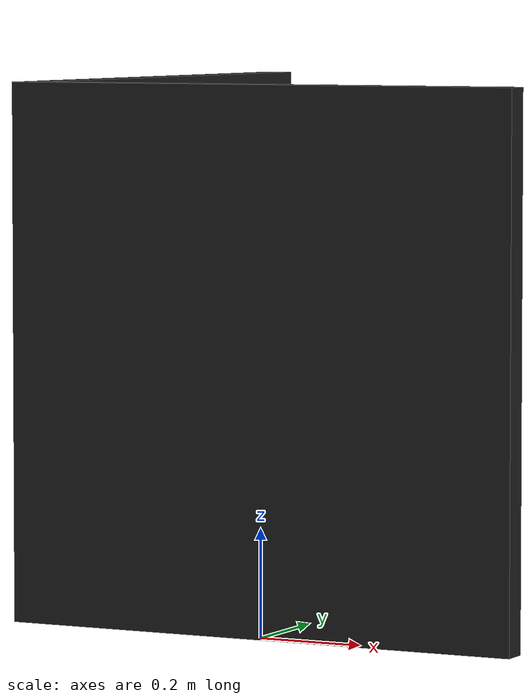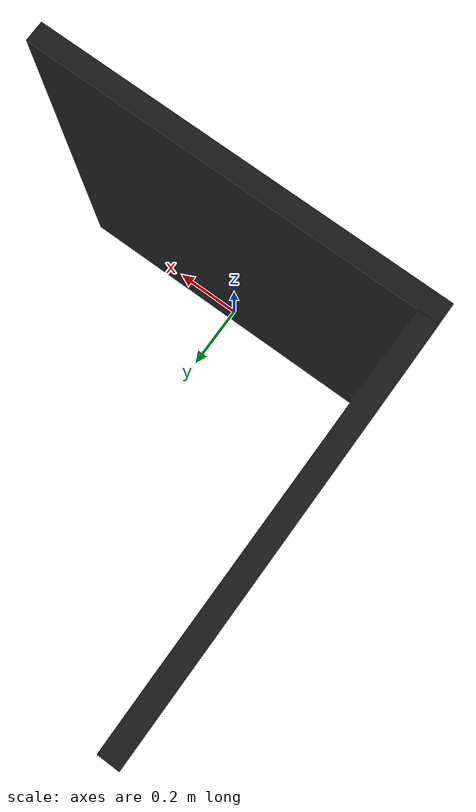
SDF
<?xml version='1.0'?>
<sdf version='1.4'>
  <model name="barrier_2">
	<static>true</static>
	<link name='chassis'>
	<pose>0 0 0.5 0 0 0</pose>

	<collision name='barrier_collision'>
	  <geometry>
		<box>
		  <size>1 .05 1</size>
		</box>
	  </geometry>
	</collision>

	<visual name='visual'>
	  <geometry>
		<box>
		  <size>1 .05 1</size>
		</box>
	  </geometry>
      <material>
        <ambient>.1 .1 .1 1</ambient>
        <diffuse>.1 .1 .1 1</diffuse>
        <specular>0.1 0.1 0.1 1</specular>
        <emissive>0 0 0 0</emissive>
      </material>
	</visual>

	<collision name='barrier_collision2'>
      <pose>-0.475 0.525 0 0 0 1.57</pose>
	  <geometry>
		<box>
		  <size>1 .05 1</size>
		</box>
	  </geometry>
	</collision>

	<visual name='visual2'>
      <pose>-0.475 0.525 0 0 0 1.57</pose>
	  <geometry>
		<box>
		  <size>1 .05 1</size>
		</box>
	  </geometry>
      <material>
        <ambient>.1 .1 .1 1</ambient>
        <diffuse>.1 .1 .1 1</diffuse>
        <specular>0.1 0.1 0.1 1</specular>
        <emissive>0 0 0 0</emissive>
      </material>
	</visual>
	<sensor name="contact_sensor_1" type="contact">

	<plugin name="my_contact_plugin" filename="libgazebo_ros_bumper.so">
		<bumperTopicName>obstacle_bumper</bumperTopicName>
    		<frameName>world</frameName>
	</plugin>
          <contact>
            <collision>barrier_collision</collision>
          </contact>

      </sensor>
	<sensor name="contact_sensor_2" type="contact">

	<plugin name="my_contact_plugin" filename="libgazebo_ros_bumper.so">
		<bumperTopicName>obstacle_bumper</bumperTopicName>
    		<frameName>world</frameName>
	</plugin>
          <contact>
            <collision>barrier_collision2</collision>
          </contact>

      </sensor>
	</link>
	</model>
</sdf>
